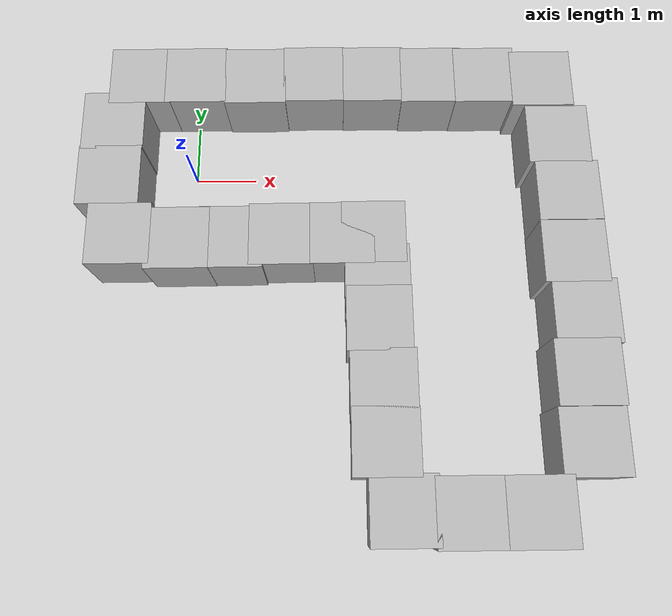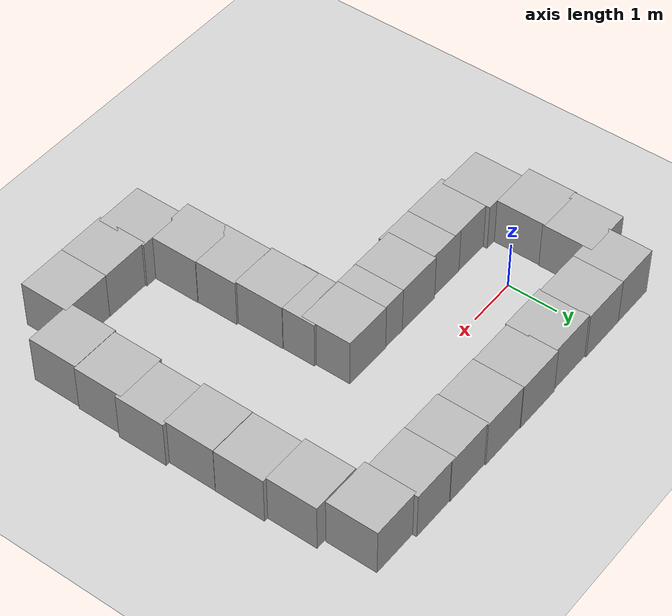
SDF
<sdf version='1.10'>
  <world name='empty'>
    <physics name='1ms' type='ignored'>
      <max_step_size>0.001</max_step_size>
      <real_time_factor>1</real_time_factor>
      <real_time_update_rate>1000</real_time_update_rate>
    </physics>
    <plugin name='gz::sim::systems::Physics' filename='gz-sim-physics-system'/>
    <plugin name='gz::sim::systems::UserCommands' filename='gz-sim-user-commands-system'/>
    <plugin name='gz::sim::systems::SceneBroadcaster' filename='gz-sim-scene-broadcaster-system'/>
    <plugin name='gz::sim::systems::Sensors' filename='gz-sim-sensors-system'>
      <render_engine>ogre2</render_engine>
    </plugin>
    <plugin name='gz::sim::systems::Contact' filename='gz-sim-contact-system'/>
    <gravity>0 0 -9.8000000000000007</gravity>
    <magnetic_field>5.5644999999999998e-06 2.2875799999999999e-05 -4.2388400000000002e-05</magnetic_field>
    <atmosphere type='adiabatic'/>
    <scene>
      <ambient>0.400000006 0.400000006 0.400000006 1</ambient>
      <background>0.699999988 0.699999988 0.699999988 1</background>
      <shadows>true</shadows>
    </scene>
    <model name='ground_plane'>
      <static>true</static>
      <link name='link'>
        <collision name='collision'>
          <geometry>
            <plane>
              <normal>0 0 1</normal>
              <size>100 100</size>
            </plane>
          </geometry>
          <surface>
            <friction>
              <ode>
                <mu>100</mu>
                <mu2>100</mu2>
              </ode>
            </friction>
            <bounce/>
            <contact/>
          </surface>
        </collision>
        <visual name='visual'>
          <geometry>
            <plane>
              <normal>0 0 1</normal>
              <size>100 100</size>
            </plane>
          </geometry>
          <material>
            <ambient>0.800000012 0.800000012 0.800000012 1</ambient>
            <diffuse>0.800000012 0.800000012 0.800000012 1</diffuse>
            <specular>0.800000012 0.800000012 0.800000012 1</specular>
          </material>
        </visual>
        <pose>0 0 0 0 0 0</pose>
        <inertial>
          <pose>0 0 0 0 0 0</pose>
          <mass>1</mass>
          <inertia>
            <ixx>1</ixx>
            <ixy>0</ixy>
            <ixz>0</ixz>
            <iyy>1</iyy>
            <iyz>0</iyz>
            <izz>1</izz>
          </inertia>
        </inertial>
        <enable_wind>false</enable_wind>
      </link>
      <pose>0 0 0 0 0 0</pose>
      <self_collide>false</self_collide>
    </model>
    <model name='box_0'>
      <pose>3.0095133074073535 -2.6912053081696916 0.50000182633453216 4.5785649174861234e-06 -1.3607689952012716e-07 -1.2972234958108424e-06</pose>
      <link name='box_link'>
        <inertial>
          <inertia>
            <ixx>0.16666</ixx>
            <ixy>0</ixy>
            <ixz>0</ixz>
            <iyy>0.16666</iyy>
            <iyz>0</iyz>
            <izz>0.16666</izz>
          </inertia>
          <mass>1</mass>
          <pose>0 0 0 0 0 0</pose>
        </inertial>
        <collision name='box_collision'>
          <geometry>
            <box>
              <size>1 1 1</size>
            </box>
          </geometry>
          <surface>
            <friction>
              <ode/>
            </friction>
            <bounce/>
            <contact/>
          </surface>
        </collision>
        <visual name='box_visual'>
          <geometry>
            <box>
              <size>1 1 1</size>
            </box>
          </geometry>
          <material>
            <ambient>0.300000012 0.300000012 0.300000012 1</ambient>
            <diffuse>0.699999988 0.699999988 0.699999988 1</diffuse>
            <specular>1 1 1 1</specular>
          </material>
        </visual>
        <pose>0 0 0 0 0 0</pose>
        <enable_wind>false</enable_wind>
      </link>
      <static>true</static>
      <self_collide>false</self_collide>
    </model>
    <model name='box_1'>
      <pose>0.081497767922265402 1.4758442578728908 0.50000082447435479 -1.6599491581963184e-07 3.0248837264881625e-06 -0.00088691179046797622</pose>
      <link name='box_link'>
        <inertial>
          <inertia>
            <ixx>0.16666</ixx>
            <ixy>0</ixy>
            <ixz>0</ixz>
            <iyy>0.16666</iyy>
            <iyz>0</iyz>
            <izz>0.16666</izz>
          </inertia>
          <mass>1</mass>
          <pose>0 0 0 0 0 0</pose>
        </inertial>
        <collision name='box_collision'>
          <geometry>
            <box>
              <size>1 1 1</size>
            </box>
          </geometry>
          <surface>
            <friction>
              <ode/>
            </friction>
            <bounce/>
            <contact/>
          </surface>
        </collision>
        <visual name='box_visual'>
          <geometry>
            <box>
              <size>1 1 1</size>
            </box>
          </geometry>
          <material>
            <ambient>0.300000012 0.300000012 0.300000012 1</ambient>
            <diffuse>0.699999988 0.699999988 0.699999988 1</diffuse>
            <specular>1 1 1 1</specular>
          </material>
        </visual>
        <pose>0 0 0 0 0 0</pose>
        <enable_wind>false</enable_wind>
      </link>
      <static>true</static>
      <self_collide>false</self_collide>
    </model>
    <model name='box_6'>
      <pose>4.2168153203830094 -5.4940161935443372 0.50000081897589976 1.6515044878390743e-06 3.9077176445165654e-07 2.3029336991015516e-07</pose>
      <link name='box_link'>
        <inertial>
          <inertia>
            <ixx>0.16666</ixx>
            <ixy>0</ixy>
            <ixz>0</ixz>
            <iyy>0.16666</iyy>
            <iyz>0</iyz>
            <izz>0.16666</izz>
          </inertia>
          <mass>1</mass>
          <pose>0 0 0 0 0 0</pose>
        </inertial>
        <collision name='box_collision'>
          <geometry>
            <box>
              <size>1 1 1</size>
            </box>
          </geometry>
          <surface>
            <friction>
              <ode/>
            </friction>
            <bounce/>
            <contact/>
          </surface>
        </collision>
        <visual name='box_visual'>
          <geometry>
            <box>
              <size>1 1 1</size>
            </box>
          </geometry>
          <material>
            <ambient>0.300000012 0.300000012 0.300000012 1</ambient>
            <diffuse>0.699999988 0.699999988 0.699999988 1</diffuse>
            <specular>1 1 1 1</specular>
          </material>
        </visual>
        <pose>0 0 0 0 0 0</pose>
        <enable_wind>false</enable_wind>
      </link>
      <static>true</static>
      <self_collide>false</self_collide>
    </model>
    <model name='box_9'>
      <pose>-0.10102128436484457 -1.3808365942567427 0.50000325449080352 1.8970093762715595e-06 -5.7500064378944079e-06 2.3601797059310263e-06</pose>
      <link name='box_link'>
        <inertial>
          <inertia>
            <ixx>0.16666</ixx>
            <ixy>0</ixy>
            <ixz>0</ixz>
            <iyy>0.16666</iyy>
            <iyz>0</iyz>
            <izz>0.16666</izz>
          </inertia>
          <mass>1</mass>
          <pose>0 0 0 0 0 0</pose>
        </inertial>
        <collision name='box_collision'>
          <geometry>
            <box>
              <size>1 1 1</size>
            </box>
          </geometry>
          <surface>
            <friction>
              <ode/>
            </friction>
            <bounce/>
            <contact/>
          </surface>
        </collision>
        <visual name='box_visual'>
          <geometry>
            <box>
              <size>1 1 1</size>
            </box>
          </geometry>
          <material>
            <ambient>0.300000012 0.300000012 0.300000012 1</ambient>
            <diffuse>0.699999988 0.699999988 0.699999988 1</diffuse>
            <specular>1 1 1 1</specular>
          </material>
        </visual>
        <pose>0 0 0 0 0 0</pose>
        <enable_wind>false</enable_wind>
      </link>
      <static>true</static>
      <self_collide>false</self_collide>
    </model>
    <model name='box_1_1'>
      <pose>-0.82771368686159152 1.4738958420804569 0.49999995309102147 -9.5054967470474097e-07 -6.7096570737553843e-07 -5.8611763813176057e-05</pose>
      <link name='box_link'>
        <inertial>
          <inertia>
            <ixx>0.16666</ixx>
            <ixy>0</ixy>
            <ixz>0</ixz>
            <iyy>0.16666</iyy>
            <iyz>0</iyz>
            <izz>0.16666</izz>
          </inertia>
          <mass>1</mass>
          <pose>0 0 0 0 0 0</pose>
        </inertial>
        <collision name='box_collision'>
          <geometry>
            <box>
              <size>1 1 1</size>
            </box>
          </geometry>
          <surface>
            <friction>
              <ode/>
            </friction>
            <bounce/>
            <contact/>
          </surface>
        </collision>
        <visual name='box_visual'>
          <geometry>
            <box>
              <size>1 1 1</size>
            </box>
          </geometry>
          <material>
            <ambient>0.300000012 0.300000012 0.300000012 1</ambient>
            <diffuse>0.699999988 0.699999988 0.699999988 1</diffuse>
            <specular>1 1 1 1</specular>
          </material>
        </visual>
        <pose>0 0 0 0 0 0</pose>
        <enable_wind>false</enable_wind>
      </link>
      <static>true</static>
      <self_collide>false</self_collide>
    </model>
    <model name='box_1_2'>
      <pose>-1.2217133185636089 0.65229152005033453 0.50000062489040498 -1.7791316493151005e-06 -1.0382704582425532e-06 -5.4270249412569293e-05</pose>
      <link name='box_link'>
        <inertial>
          <inertia>
            <ixx>0.16666</ixx>
            <ixy>0</ixy>
            <ixz>0</ixz>
            <iyy>0.16666</iyy>
            <iyz>0</iyz>
            <izz>0.16666</izz>
          </inertia>
          <mass>1</mass>
          <pose>0 0 0 0 0 0</pose>
        </inertial>
        <collision name='box_collision'>
          <geometry>
            <box>
              <size>1 1 1</size>
            </box>
          </geometry>
          <surface>
            <friction>
              <ode/>
            </friction>
            <bounce/>
            <contact/>
          </surface>
        </collision>
        <visual name='box_visual'>
          <geometry>
            <box>
              <size>1 1 1</size>
            </box>
          </geometry>
          <material>
            <ambient>0.300000012 0.300000012 0.300000012 1</ambient>
            <diffuse>0.699999988 0.699999988 0.699999988 1</diffuse>
            <specular>1 1 1 1</specular>
          </material>
        </visual>
        <pose>0 0 0 0 0 0</pose>
        <enable_wind>false</enable_wind>
      </link>
      <static>true</static>
      <self_collide>false</self_collide>
    </model>
    <model name='box_1_3'>
      <pose>-1.2347201075135705 -0.30442317062719321 0.5000022433703768 1.2284196541940158e-06 -6.6573311299800844e-06 -5.388903304843439e-05</pose>
      <link name='box_link'>
        <inertial>
          <inertia>
            <ixx>0.16666</ixx>
            <ixy>0</ixy>
            <ixz>0</ixz>
            <iyy>0.16666</iyy>
            <iyz>0</iyz>
            <izz>0.16666</izz>
          </inertia>
          <mass>1</mass>
          <pose>0 0 0 0 0 0</pose>
        </inertial>
        <collision name='box_collision'>
          <geometry>
            <box>
              <size>1 1 1</size>
            </box>
          </geometry>
          <surface>
            <friction>
              <ode/>
            </friction>
            <bounce/>
            <contact/>
          </surface>
        </collision>
        <visual name='box_visual'>
          <geometry>
            <box>
              <size>1 1 1</size>
            </box>
          </geometry>
          <material>
            <ambient>0.300000012 0.300000012 0.300000012 1</ambient>
            <diffuse>0.699999988 0.699999988 0.699999988 1</diffuse>
            <specular>1 1 1 1</specular>
          </material>
        </visual>
        <pose>0 0 0 0 0 0</pose>
        <enable_wind>false</enable_wind>
      </link>
      <static>true</static>
      <self_collide>false</self_collide>
    </model>
    <model name='box_1_4'>
      <pose>-1.0132462520150898 -1.2984428615396659 0.50000354928726642 1.4772731999298388e-06 -7.2460893026729384e-06 -7.8109124218659346e-06</pose>
      <link name='box_link'>
        <inertial>
          <inertia>
            <ixx>0.16666</ixx>
            <ixy>0</ixy>
            <ixz>0</ixz>
            <iyy>0.16666</iyy>
            <iyz>0</iyz>
            <izz>0.16666</izz>
          </inertia>
          <mass>1</mass>
          <pose>0 0 0 0 0 0</pose>
        </inertial>
        <collision name='box_collision'>
          <geometry>
            <box>
              <size>1 1 1</size>
            </box>
          </geometry>
          <surface>
            <friction>
              <ode/>
            </friction>
            <bounce/>
            <contact/>
          </surface>
        </collision>
        <visual name='box_visual'>
          <geometry>
            <box>
              <size>1 1 1</size>
            </box>
          </geometry>
          <material>
            <ambient>0.300000012 0.300000012 0.300000012 1</ambient>
            <diffuse>0.699999988 0.699999988 0.699999988 1</diffuse>
            <specular>1 1 1 1</specular>
          </material>
        </visual>
        <pose>0 0 0 0 0 0</pose>
        <enable_wind>false</enable_wind>
      </link>
      <static>true</static>
      <self_collide>false</self_collide>
    </model>
    <model name='box_1_5'>
      <pose>0.73606156534351208 -1.3762429262733706 0.50000017024589705 -1.231190591578888e-06 2.0099345313866536e-06 -0.00044121219287707533</pose>
      <link name='box_link'>
        <inertial>
          <inertia>
            <ixx>0.16666</ixx>
            <ixy>0</ixy>
            <ixz>0</ixz>
            <iyy>0.16666</iyy>
            <iyz>0</iyz>
            <izz>0.16666</izz>
          </inertia>
          <mass>1</mass>
          <pose>0 0 0 0 0 0</pose>
        </inertial>
        <collision name='box_collision'>
          <geometry>
            <box>
              <size>1 1 1</size>
            </box>
          </geometry>
          <surface>
            <friction>
              <ode/>
            </friction>
            <bounce/>
            <contact/>
          </surface>
        </collision>
        <visual name='box_visual'>
          <geometry>
            <box>
              <size>1 1 1</size>
            </box>
          </geometry>
          <material>
            <ambient>0.300000012 0.300000012 0.300000012 1</ambient>
            <diffuse>0.699999988 0.699999988 0.699999988 1</diffuse>
            <specular>1 1 1 1</specular>
          </material>
        </visual>
        <pose>0 0 0 0 0 0</pose>
        <enable_wind>false</enable_wind>
      </link>
      <static>true</static>
      <self_collide>false</self_collide>
    </model>
    <model name='box_1_6'>
      <pose>1.5151936677603568 -1.3372063575583744 0.500000554867019 -4.4685925085417767e-07 1.8334640597377315e-06 -0.0005220385264343712</pose>
      <link name='box_link'>
        <inertial>
          <inertia>
            <ixx>0.16666</ixx>
            <ixy>0</ixy>
            <ixz>0</ixz>
            <iyy>0.16666</iyy>
            <iyz>0</iyz>
            <izz>0.16666</izz>
          </inertia>
          <mass>1</mass>
          <pose>0 0 0 0 0 0</pose>
        </inertial>
        <collision name='box_collision'>
          <geometry>
            <box>
              <size>1 1 1</size>
            </box>
          </geometry>
          <surface>
            <friction>
              <ode/>
            </friction>
            <bounce/>
            <contact/>
          </surface>
        </collision>
        <visual name='box_visual'>
          <geometry>
            <box>
              <size>1 1 1</size>
            </box>
          </geometry>
          <material>
            <ambient>0.300000012 0.300000012 0.300000012 1</ambient>
            <diffuse>0.699999988 0.699999988 0.699999988 1</diffuse>
            <specular>1 1 1 1</specular>
          </material>
        </visual>
        <pose>0 0 0 0 0 0</pose>
        <enable_wind>false</enable_wind>
      </link>
      <static>true</static>
      <self_collide>false</self_collide>
    </model>
    <model name='box_1_7'>
      <pose>2.4625252221211471 -1.3317603135855642 0.50000237111352686 -2.6443443852808213e-06 3.8150276845391517e-06 -0.00064699741205567242</pose>
      <link name='box_link'>
        <inertial>
          <inertia>
            <ixx>0.16666</ixx>
            <ixy>0</ixy>
            <ixz>0</ixz>
            <iyy>0.16666</iyy>
            <iyz>0</iyz>
            <izz>0.16666</izz>
          </inertia>
          <mass>1</mass>
          <pose>0 0 0 0 0 0</pose>
        </inertial>
        <collision name='box_collision'>
          <geometry>
            <box>
              <size>1 1 1</size>
            </box>
          </geometry>
          <surface>
            <friction>
              <ode/>
            </friction>
            <bounce/>
            <contact/>
          </surface>
        </collision>
        <visual name='box_visual'>
          <geometry>
            <box>
              <size>1 1 1</size>
            </box>
          </geometry>
          <material>
            <ambient>0.300000012 0.300000012 0.300000012 1</ambient>
            <diffuse>0.699999988 0.699999988 0.699999988 1</diffuse>
            <specular>1 1 1 1</specular>
          </material>
        </visual>
        <pose>0 0 0 0 0 0</pose>
        <enable_wind>false</enable_wind>
      </link>
      <static>true</static>
      <self_collide>false</self_collide>
    </model>
    <model name='box_1_8'>
      <pose>3.0481808134906765 -3.6543993837267199 0.49999900931618224 7.3350412363957655e-07 -2.6323376464159831e-06 -0.00071629117935211452</pose>
      <link name='box_link'>
        <inertial>
          <inertia>
            <ixx>0.16666</ixx>
            <ixy>0</ixy>
            <ixz>0</ixz>
            <iyy>0.16666</iyy>
            <iyz>0</iyz>
            <izz>0.16666</izz>
          </inertia>
          <mass>1</mass>
          <pose>0 0 0 0 0 0</pose>
        </inertial>
        <collision name='box_collision'>
          <geometry>
            <box>
              <size>1 1 1</size>
            </box>
          </geometry>
          <surface>
            <friction>
              <ode/>
            </friction>
            <bounce/>
            <contact/>
          </surface>
        </collision>
        <visual name='box_visual'>
          <geometry>
            <box>
              <size>1 1 1</size>
            </box>
          </geometry>
          <material>
            <ambient>0.300000012 0.300000012 0.300000012 1</ambient>
            <diffuse>0.699999988 0.699999988 0.699999988 1</diffuse>
            <specular>1 1 1 1</specular>
          </material>
        </visual>
        <pose>0 0 0 0 0 0</pose>
        <enable_wind>false</enable_wind>
      </link>
      <static>true</static>
      <self_collide>false</self_collide>
    </model>
    <model name='box_1_9'>
      <pose>2.9989931498245452 -2.0237045336915549 0.49999913414881381 -1.375020496882308e-06 -3.2913957944769948e-07 -0.00074492350791114986</pose>
      <link name='box_link'>
        <inertial>
          <inertia>
            <ixx>0.16666</ixx>
            <ixy>0</ixy>
            <ixz>0</ixz>
            <iyy>0.16666</iyy>
            <iyz>0</iyz>
            <izz>0.16666</izz>
          </inertia>
          <mass>1</mass>
          <pose>0 0 0 0 0 0</pose>
        </inertial>
        <collision name='box_collision'>
          <geometry>
            <box>
              <size>1 1 1</size>
            </box>
          </geometry>
          <surface>
            <friction>
              <ode/>
            </friction>
            <bounce/>
            <contact/>
          </surface>
        </collision>
        <visual name='box_visual'>
          <geometry>
            <box>
              <size>1 1 1</size>
            </box>
          </geometry>
          <material>
            <ambient>0.300000012 0.300000012 0.300000012 1</ambient>
            <diffuse>0.699999988 0.699999988 0.699999988 1</diffuse>
            <specular>1 1 1 1</specular>
          </material>
        </visual>
        <pose>0 0 0 0 0 0</pose>
        <enable_wind>false</enable_wind>
      </link>
      <static>true</static>
      <self_collide>false</self_collide>
    </model>
    <model name='box_1_10'>
      <pose>1.0642210155003908 1.4479578460829836 0.50000011364451891 -6.0172237811176574e-09 -3.8087389959935872e-07 -0.00083502856588326335</pose>
      <link name='box_link'>
        <inertial>
          <inertia>
            <ixx>0.16666</ixx>
            <ixy>0</ixy>
            <ixz>0</ixz>
            <iyy>0.16666</iyy>
            <iyz>0</iyz>
            <izz>0.16666</izz>
          </inertia>
          <mass>1</mass>
          <pose>0 0 0 0 0 0</pose>
        </inertial>
        <collision name='box_collision'>
          <geometry>
            <box>
              <size>1 1 1</size>
            </box>
          </geometry>
          <surface>
            <friction>
              <ode/>
            </friction>
            <bounce/>
            <contact/>
          </surface>
        </collision>
        <visual name='box_visual'>
          <geometry>
            <box>
              <size>1 1 1</size>
            </box>
          </geometry>
          <material>
            <ambient>0.300000012 0.300000012 0.300000012 1</ambient>
            <diffuse>0.699999988 0.699999988 0.699999988 1</diffuse>
            <specular>1 1 1 1</specular>
          </material>
        </visual>
        <pose>0 0 0 0 0 0</pose>
        <enable_wind>false</enable_wind>
      </link>
      <static>true</static>
      <self_collide>false</self_collide>
    </model>
    <model name='box_1_11'>
      <pose>2.0338804407388689 1.4725252083416804 0.49999929471211679 -1.5608391211088755e-07 2.1987118435738717e-06 -0.00084677043976578482</pose>
      <link name='box_link'>
        <inertial>
          <inertia>
            <ixx>0.16666</ixx>
            <ixy>0</ixy>
            <ixz>0</ixz>
            <iyy>0.16666</iyy>
            <iyz>0</iyz>
            <izz>0.16666</izz>
          </inertia>
          <mass>1</mass>
          <pose>0 0 0 0 0 0</pose>
        </inertial>
        <collision name='box_collision'>
          <geometry>
            <box>
              <size>1 1 1</size>
            </box>
          </geometry>
          <surface>
            <friction>
              <ode/>
            </friction>
            <bounce/>
            <contact/>
          </surface>
        </collision>
        <visual name='box_visual'>
          <geometry>
            <box>
              <size>1 1 1</size>
            </box>
          </geometry>
          <material>
            <ambient>0.300000012 0.300000012 0.300000012 1</ambient>
            <diffuse>0.699999988 0.699999988 0.699999988 1</diffuse>
            <specular>1 1 1 1</specular>
          </material>
        </visual>
        <pose>0 0 0 0 0 0</pose>
        <enable_wind>false</enable_wind>
      </link>
      <static>true</static>
      <self_collide>false</self_collide>
    </model>
    <model name='box_1_12'>
      <pose>3.0141956895983069 1.4611062827681174 0.49999894764163122 1.9530166196889182e-08 3.5467306158560323e-06 -0.00085036424341949619</pose>
      <link name='box_link'>
        <inertial>
          <inertia>
            <ixx>0.16666</ixx>
            <ixy>0</ixy>
            <ixz>0</ixz>
            <iyy>0.16666</iyy>
            <iyz>0</iyz>
            <izz>0.16666</izz>
          </inertia>
          <mass>1</mass>
          <pose>0 0 0 0 0 0</pose>
        </inertial>
        <collision name='box_collision'>
          <geometry>
            <box>
              <size>1 1 1</size>
            </box>
          </geometry>
          <surface>
            <friction>
              <ode/>
            </friction>
            <bounce/>
            <contact/>
          </surface>
        </collision>
        <visual name='box_visual'>
          <geometry>
            <box>
              <size>1 1 1</size>
            </box>
          </geometry>
          <material>
            <ambient>0.300000012 0.300000012 0.300000012 1</ambient>
            <diffuse>0.699999988 0.699999988 0.699999988 1</diffuse>
            <specular>1 1 1 1</specular>
          </material>
        </visual>
        <pose>0 0 0 0 0 0</pose>
        <enable_wind>false</enable_wind>
      </link>
      <static>true</static>
      <self_collide>false</self_collide>
    </model>
    <model name='box_1_13'>
      <pose>3.9691177865932494 1.4357824123958778 0.49999952949262622 1.6840412073496375e-07 4.2982429113585398e-06 -0.00085386535960531253</pose>
      <link name='box_link'>
        <inertial>
          <inertia>
            <ixx>0.16666</ixx>
            <ixy>0</ixy>
            <ixz>0</ixz>
            <iyy>0.16666</iyy>
            <iyz>0</iyz>
            <izz>0.16666</izz>
          </inertia>
          <mass>1</mass>
          <pose>0 0 0 0 0 0</pose>
        </inertial>
        <collision name='box_collision'>
          <geometry>
            <box>
              <size>1 1 1</size>
            </box>
          </geometry>
          <surface>
            <friction>
              <ode/>
            </friction>
            <bounce/>
            <contact/>
          </surface>
        </collision>
        <visual name='box_visual'>
          <geometry>
            <box>
              <size>1 1 1</size>
            </box>
          </geometry>
          <material>
            <ambient>0.300000012 0.300000012 0.300000012 1</ambient>
            <diffuse>0.699999988 0.699999988 0.699999988 1</diffuse>
            <specular>1 1 1 1</specular>
          </material>
        </visual>
        <pose>0 0 0 0 0 0</pose>
        <enable_wind>false</enable_wind>
      </link>
      <static>true</static>
      <self_collide>false</self_collide>
    </model>
    <model name='box_1_14'>
      <pose>4.8522125686715665 1.4239790232322838 0.50000078724662356 -1.1816334174222456e-07 2.5941616177787219e-06 -0.00085757429677762727</pose>
      <link name='box_link'>
        <inertial>
          <inertia>
            <ixx>0.16666</ixx>
            <ixy>0</ixy>
            <ixz>0</ixz>
            <iyy>0.16666</iyy>
            <iyz>0</iyz>
            <izz>0.16666</izz>
          </inertia>
          <mass>1</mass>
          <pose>0 0 0 0 0 0</pose>
        </inertial>
        <collision name='box_collision'>
          <geometry>
            <box>
              <size>1 1 1</size>
            </box>
          </geometry>
          <surface>
            <friction>
              <ode/>
            </friction>
            <bounce/>
            <contact/>
          </surface>
        </collision>
        <visual name='box_visual'>
          <geometry>
            <box>
              <size>1 1 1</size>
            </box>
          </geometry>
          <material>
            <ambient>0.300000012 0.300000012 0.300000012 1</ambient>
            <diffuse>0.699999988 0.699999988 0.699999988 1</diffuse>
            <specular>1 1 1 1</specular>
          </material>
        </visual>
        <pose>0 0 0 0 0 0</pose>
        <enable_wind>false</enable_wind>
      </link>
      <static>true</static>
      <self_collide>false</self_collide>
    </model>
    <model name='box_1_15'>
      <pose>3.0563751523808333 -4.5082619112810507 0.49999935593583517 -4.0420286181957667e-07 -1.0820307631603993e-06 -0.00086907577925952949</pose>
      <link name='box_link'>
        <inertial>
          <inertia>
            <ixx>0.16666</ixx>
            <ixy>0</ixy>
            <ixz>0</ixz>
            <iyy>0.16666</iyy>
            <iyz>0</iyz>
            <izz>0.16666</izz>
          </inertia>
          <mass>1</mass>
          <pose>0 0 0 0 0 0</pose>
        </inertial>
        <collision name='box_collision'>
          <geometry>
            <box>
              <size>1 1 1</size>
            </box>
          </geometry>
          <surface>
            <friction>
              <ode/>
            </friction>
            <bounce/>
            <contact/>
          </surface>
        </collision>
        <visual name='box_visual'>
          <geometry>
            <box>
              <size>1 1 1</size>
            </box>
          </geometry>
          <material>
            <ambient>0.300000012 0.300000012 0.300000012 1</ambient>
            <diffuse>0.699999988 0.699999988 0.699999988 1</diffuse>
            <specular>1 1 1 1</specular>
          </material>
        </visual>
        <pose>0 0 0 0 0 0</pose>
        <enable_wind>false</enable_wind>
      </link>
      <static>true</static>
      <self_collide>false</self_collide>
    </model>
    <model name='box_1_16'>
      <pose>3.2869721756749399 -5.4552441175159228 0.49999936727887601 2.8300664302896312e-07 -2.4463987752514675e-06 -0.00087134437383765216</pose>
      <link name='box_link'>
        <inertial>
          <inertia>
            <ixx>0.16666</ixx>
            <ixy>0</ixy>
            <ixz>0</ixz>
            <iyy>0.16666</iyy>
            <iyz>0</iyz>
            <izz>0.16666</izz>
          </inertia>
          <mass>1</mass>
          <pose>0 0 0 0 0 0</pose>
        </inertial>
        <collision name='box_collision'>
          <geometry>
            <box>
              <size>1 1 1</size>
            </box>
          </geometry>
          <surface>
            <friction>
              <ode/>
            </friction>
            <bounce/>
            <contact/>
          </surface>
        </collision>
        <visual name='box_visual'>
          <geometry>
            <box>
              <size>1 1 1</size>
            </box>
          </geometry>
          <material>
            <ambient>0.300000012 0.300000012 0.300000012 1</ambient>
            <diffuse>0.699999988 0.699999988 0.699999988 1</diffuse>
            <specular>1 1 1 1</specular>
          </material>
        </visual>
        <pose>0 0 0 0 0 0</pose>
        <enable_wind>false</enable_wind>
      </link>
      <static>true</static>
      <self_collide>false</self_collide>
    </model>
    <model name='box_1_17'>
      <pose>5.2000636620301153 -5.4954192178299728 0.50000151425109096 1.4053854632483564e-06 3.1792491270734975e-06 -0.00087428516472246802</pose>
      <link name='box_link'>
        <inertial>
          <inertia>
            <ixx>0.16666</ixx>
            <ixy>0</ixy>
            <ixz>0</ixz>
            <iyy>0.16666</iyy>
            <iyz>0</iyz>
            <izz>0.16666</izz>
          </inertia>
          <mass>1</mass>
          <pose>0 0 0 0 0 0</pose>
        </inertial>
        <collision name='box_collision'>
          <geometry>
            <box>
              <size>1 1 1</size>
            </box>
          </geometry>
          <surface>
            <friction>
              <ode/>
            </friction>
            <bounce/>
            <contact/>
          </surface>
        </collision>
        <visual name='box_visual'>
          <geometry>
            <box>
              <size>1 1 1</size>
            </box>
          </geometry>
          <material>
            <ambient>0.300000012 0.300000012 0.300000012 1</ambient>
            <diffuse>0.699999988 0.699999988 0.699999988 1</diffuse>
            <specular>1 1 1 1</specular>
          </material>
        </visual>
        <pose>0 0 0 0 0 0</pose>
        <enable_wind>false</enable_wind>
      </link>
      <static>true</static>
      <self_collide>false</self_collide>
    </model>
    <model name='box_1_18'>
      <pose>6.0405899569906589 -4.5501649517202516 0.49999834198521192 -7.072505855721213e-07 -2.315653622859964e-06 -0.00087807233037127876</pose>
      <link name='box_link'>
        <inertial>
          <inertia>
            <ixx>0.16666</ixx>
            <ixy>0</ixy>
            <ixz>0</ixz>
            <iyy>0.16666</iyy>
            <iyz>0</iyz>
            <izz>0.16666</izz>
          </inertia>
          <mass>1</mass>
          <pose>0 0 0 0 0 0</pose>
        </inertial>
        <collision name='box_collision'>
          <geometry>
            <box>
              <size>1 1 1</size>
            </box>
          </geometry>
          <surface>
            <friction>
              <ode/>
            </friction>
            <bounce/>
            <contact/>
          </surface>
        </collision>
        <visual name='box_visual'>
          <geometry>
            <box>
              <size>1 1 1</size>
            </box>
          </geometry>
          <material>
            <ambient>0.300000012 0.300000012 0.300000012 1</ambient>
            <diffuse>0.699999988 0.699999988 0.699999988 1</diffuse>
            <specular>1 1 1 1</specular>
          </material>
        </visual>
        <pose>0 0 0 0 0 0</pose>
        <enable_wind>false</enable_wind>
      </link>
      <static>true</static>
      <self_collide>false</self_collide>
    </model>
    <model name='box_1_19'>
      <pose>6.0727238565499162 -3.5449201722768229 0.49999822950437189 -1.4347890573732718e-07 -3.0373944472237363e-06 -0.00088212740478727696</pose>
      <link name='box_link'>
        <inertial>
          <inertia>
            <ixx>0.16666</ixx>
            <ixy>0</ixy>
            <ixz>0</ixz>
            <iyy>0.16666</iyy>
            <iyz>0</iyz>
            <izz>0.16666</izz>
          </inertia>
          <mass>1</mass>
          <pose>0 0 0 0 0 0</pose>
        </inertial>
        <collision name='box_collision'>
          <geometry>
            <box>
              <size>1 1 1</size>
            </box>
          </geometry>
          <surface>
            <friction>
              <ode/>
            </friction>
            <bounce/>
            <contact/>
          </surface>
        </collision>
        <visual name='box_visual'>
          <geometry>
            <box>
              <size>1 1 1</size>
            </box>
          </geometry>
          <material>
            <ambient>0.300000012 0.300000012 0.300000012 1</ambient>
            <diffuse>0.699999988 0.699999988 0.699999988 1</diffuse>
            <specular>1 1 1 1</specular>
          </material>
        </visual>
        <pose>0 0 0 0 0 0</pose>
        <enable_wind>false</enable_wind>
      </link>
      <static>true</static>
      <self_collide>false</self_collide>
    </model>
    <model name='box_1_20'>
      <pose>6.1305858640104196 -2.6237565389481454 0.49999791244324676 -2.9596569142721775e-07 -3.0346968501943824e-06 -0.00088473431076181903</pose>
      <link name='box_link'>
        <inertial>
          <inertia>
            <ixx>0.16666</ixx>
            <ixy>0</ixy>
            <ixz>0</ixz>
            <iyy>0.16666</iyy>
            <iyz>0</iyz>
            <izz>0.16666</izz>
          </inertia>
          <mass>1</mass>
          <pose>0 0 0 0 0 0</pose>
        </inertial>
        <collision name='box_collision'>
          <geometry>
            <box>
              <size>1 1 1</size>
            </box>
          </geometry>
          <surface>
            <friction>
              <ode/>
            </friction>
            <bounce/>
            <contact/>
          </surface>
        </collision>
        <visual name='box_visual'>
          <geometry>
            <box>
              <size>1 1 1</size>
            </box>
          </geometry>
          <material>
            <ambient>0.300000012 0.300000012 0.300000012 1</ambient>
            <diffuse>0.699999988 0.699999988 0.699999988 1</diffuse>
            <specular>1 1 1 1</specular>
          </material>
        </visual>
        <pose>0 0 0 0 0 0</pose>
        <enable_wind>false</enable_wind>
      </link>
      <static>true</static>
      <self_collide>false</self_collide>
    </model>
    <model name='box_1_21'>
      <pose>6.0506475820756025 -1.6699928853803829 0.49999790625852725 -2.3313750901483581e-07 -3.322254126287944e-06 -0.0008847418387875651</pose>
      <link name='box_link'>
        <inertial>
          <inertia>
            <ixx>0.16666</ixx>
            <ixy>0</ixy>
            <ixz>0</ixz>
            <iyy>0.16666</iyy>
            <iyz>0</iyz>
            <izz>0.16666</izz>
          </inertia>
          <mass>1</mass>
          <pose>0 0 0 0 0 0</pose>
        </inertial>
        <collision name='box_collision'>
          <geometry>
            <box>
              <size>1 1 1</size>
            </box>
          </geometry>
          <surface>
            <friction>
              <ode/>
            </friction>
            <bounce/>
            <contact/>
          </surface>
        </collision>
        <visual name='box_visual'>
          <geometry>
            <box>
              <size>1 1 1</size>
            </box>
          </geometry>
          <material>
            <ambient>0.300000012 0.300000012 0.300000012 1</ambient>
            <diffuse>0.699999988 0.699999988 0.699999988 1</diffuse>
            <specular>1 1 1 1</specular>
          </material>
        </visual>
        <pose>0 0 0 0 0 0</pose>
        <enable_wind>false</enable_wind>
      </link>
      <static>true</static>
      <self_collide>false</self_collide>
    </model>
    <model name='box_1_22'>
      <pose>2.9549328240121793 -1.319713070747877 0.50000114387468864 -1.2558769931604765e-06 3.3071839889159105e-06 -0.00088501371129033678</pose>
      <link name='box_link'>
        <inertial>
          <inertia>
            <ixx>0.16666</ixx>
            <ixy>0</ixy>
            <ixz>0</ixz>
            <iyy>0.16666</iyy>
            <iyz>0</iyz>
            <izz>0.16666</izz>
          </inertia>
          <mass>1</mass>
          <pose>0 0 0 0 0 0</pose>
        </inertial>
        <collision name='box_collision'>
          <geometry>
            <box>
              <size>1 1 1</size>
            </box>
          </geometry>
          <surface>
            <friction>
              <ode/>
            </friction>
            <bounce/>
            <contact/>
          </surface>
        </collision>
        <visual name='box_visual'>
          <geometry>
            <box>
              <size>1 1 1</size>
            </box>
          </geometry>
          <material>
            <ambient>0.300000012 0.300000012 0.300000012 1</ambient>
            <diffuse>0.699999988 0.699999988 0.699999988 1</diffuse>
            <specular>1 1 1 1</specular>
          </material>
        </visual>
        <pose>0 0 0 0 0 0</pose>
        <enable_wind>false</enable_wind>
      </link>
      <static>true</static>
      <self_collide>false</self_collide>
    </model>
    <model name='box_1_23'>
      <pose>6.0551010367278257 -0.66254083153497823 0.49999786673426588 -2.2170989054666206e-07 -3.4629802607743631e-06 -0.00088474150378629423</pose>
      <link name='box_link'>
        <inertial>
          <inertia>
            <ixx>0.16666</ixx>
            <ixy>0</ixy>
            <ixz>0</ixz>
            <iyy>0.16666</iyy>
            <iyz>0</iyz>
            <izz>0.16666</izz>
          </inertia>
          <mass>1</mass>
          <pose>0 0 0 0 0 0</pose>
        </inertial>
        <collision name='box_collision'>
          <geometry>
            <box>
              <size>1 1 1</size>
            </box>
          </geometry>
          <surface>
            <friction>
              <ode/>
            </friction>
            <bounce/>
            <contact/>
          </surface>
        </collision>
        <visual name='box_visual'>
          <geometry>
            <box>
              <size>1 1 1</size>
            </box>
          </geometry>
          <material>
            <ambient>0.300000012 0.300000012 0.300000012 1</ambient>
            <diffuse>0.699999988 0.699999988 0.699999988 1</diffuse>
            <specular>1 1 1 1</specular>
          </material>
        </visual>
        <pose>0 0 0 0 0 0</pose>
        <enable_wind>false</enable_wind>
      </link>
      <static>true</static>
      <self_collide>false</self_collide>
    </model>
    <model name='box_1_24'>
      <pose>5.7862956862408916 1.3442240409047459 0.50000103176338184 -2.6178273838160204e-07 2.8794004433451667e-06 -0.00088470287742718962</pose>
      <link name='box_link'>
        <inertial>
          <inertia>
            <ixx>0.16666</ixx>
            <ixy>0</ixy>
            <ixz>0</ixz>
            <iyy>0.16666</iyy>
            <iyz>0</iyz>
            <izz>0.16666</izz>
          </inertia>
          <mass>1</mass>
          <pose>0 0 0 0 0 0</pose>
        </inertial>
        <collision name='box_collision'>
          <geometry>
            <box>
              <size>1 1 1</size>
            </box>
          </geometry>
          <surface>
            <friction>
              <ode/>
            </friction>
            <bounce/>
            <contact/>
          </surface>
        </collision>
        <visual name='box_visual'>
          <geometry>
            <box>
              <size>1 1 1</size>
            </box>
          </geometry>
          <material>
            <ambient>0.300000012 0.300000012 0.300000012 1</ambient>
            <diffuse>0.699999988 0.699999988 0.699999988 1</diffuse>
            <specular>1 1 1 1</specular>
          </material>
        </visual>
        <pose>0 0 0 0 0 0</pose>
        <enable_wind>false</enable_wind>
      </link>
      <static>true</static>
      <self_collide>false</self_collide>
    </model>
    <model name='box_1_25'>
      <pose>5.9762272535949048 0.32215137333308164 0.49999751264355147 -1.7555837548809035e-07 -3.7949163320127079e-06 -0.0008869034008281764</pose>
      <link name='box_link'>
        <inertial>
          <inertia>
            <ixx>0.16666</ixx>
            <ixy>0</ixy>
            <ixz>0</ixz>
            <iyy>0.16666</iyy>
            <iyz>0</iyz>
            <izz>0.16666</izz>
          </inertia>
          <mass>1</mass>
          <pose>0 0 0 0 0 0</pose>
        </inertial>
        <collision name='box_collision'>
          <geometry>
            <box>
              <size>1 1 1</size>
            </box>
          </geometry>
          <surface>
            <friction>
              <ode/>
            </friction>
            <bounce/>
            <contact/>
          </surface>
        </collision>
        <visual name='box_visual'>
          <geometry>
            <box>
              <size>1 1 1</size>
            </box>
          </geometry>
          <material>
            <ambient>0.300000012 0.300000012 0.300000012 1</ambient>
            <diffuse>0.699999988 0.699999988 0.699999988 1</diffuse>
            <specular>1 1 1 1</specular>
          </material>
        </visual>
        <pose>0 0 0 0 0 0</pose>
        <enable_wind>false</enable_wind>
      </link>
      <static>true</static>
      <self_collide>false</self_collide>
    </model>
    <light name='sun' type='directional'>
      <pose>0 0 10 0 0 0</pose>
      <cast_shadows>true</cast_shadows>
      <intensity>1</intensity>
      <direction>-0.5 0.10000000000000001 -0.90000000000000002</direction>
      <diffuse>0.800000012 0.800000012 0.800000012 1</diffuse>
      <specular>0.200000003 0.200000003 0.200000003 1</specular>
      <attenuation>
        <range>1000</range>
        <linear>0.01</linear>
        <constant>0.90000000000000002</constant>
        <quadratic>0.001</quadratic>
      </attenuation>
      <spot>
        <inner_angle>0</inner_angle>
        <outer_angle>0</outer_angle>
        <falloff>0</falloff>
      </spot>
    </light>
  </world>
</sdf>
